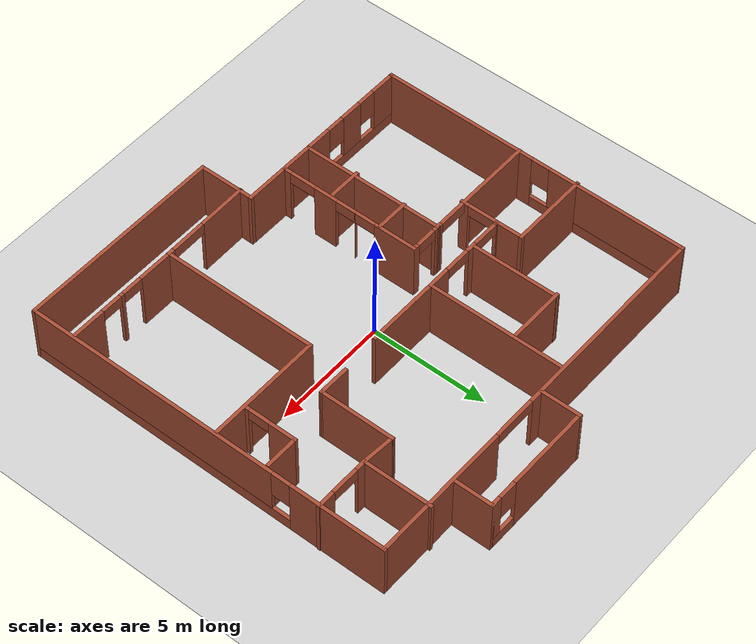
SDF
<sdf version="1.7">
 <world name="default">
  <light name="sun" type="directional">
   <pose>0 0 10 0 -0 0</pose>
   <diffuse>0.8 0.8 0.8 1</diffuse>
   <specular>0.2 0.2 0.2 1</specular>
   <attenuation>
    <range>1000</range>
    <constant>0.9</constant>
    <linear>0.01</linear>
    <quadratic>0.001</quadratic>
   </attenuation>
   <direction>-0.5 0.1 -0.9</direction>
   <spot><inner_angle>0</inner_angle><outer_angle>0</outer_angle><falloff>0</falloff></spot>
  </light>
  <model name="ground_plane">
   <static>1</static>
   <link name="link">
    <collision name="collision">
     <geometry><plane><normal>0 0 1</normal><size>100 100</size></plane></geometry>
     <surface>
      <contact><collide_bitmask>65535</collide_bitmask></contact>
      <friction><ode><mu>100</mu><mu2>50</mu2></ode></friction>
     </surface>
    </collision>
    <visual name="visual">
     <cast_shadows>0</cast_shadows>
     <geometry><plane><normal>0 0 1</normal><size>100 100</size></plane></geometry>
     <material>
      <script><uri>file://media/materials/scripts/gazebo.material</uri><name>Gazebo/Grey</name></script>
     </material>
    </visual>
   </link>
  </model>
  <gravity>0 0 -9.8</gravity>
  <magnetic_field>6e-06 2.3e-05 -4.2e-05</magnetic_field>
  <atmosphere type="adiabatic"/>
  <physics type="ode">
   <max_step_size>0.001</max_step_size>
   <real_time_factor>1</real_time_factor>
   <real_time_update_rate>1000</real_time_update_rate>
  </physics>
  <scene><ambient>0.4 0.4 0.4 1</ambient><background>0.7 0.7 0.7 1</background><shadows>1</shadows></scene>
  <spherical_coordinates>
   <surface_model>EARTH_WGS84</surface_model>
   <latitude_deg>0</latitude_deg>
   <longitude_deg>0</longitude_deg>
   <elevation>0</elevation>
   <heading_deg>0</heading_deg>
  </spherical_coordinates>
  <model name="mapx">
   <pose>-0.036516 0.215678 0 0 -0 0</pose>
   <link name="Door_7">
    <collision name="Door_7_Collision">
     <geometry><box><size>1.36261 0.2 2</size></box></geometry>
     <pose>0 0 1 0 -0 0</pose>
    </collision>
    <visual name="Door_7_Visual">
     <pose>0 0 1 0 -0 0</pose>
     <geometry><box><size>1.36261 0.2 2</size></box></geometry>
     <material>
      <script><uri>file://media/materials/scripts/gazebo.material</uri><name>Gazebo/Grey</name></script>
     </material>
    </visual>
    <pose>4.3381 -0.368604 0 0 -0 0</pose>
   </link>
   <link name="Wall_0">
    <pose>0.038988 7.10477 0 0 -0 0</pose>
    <visual name="Wall_0_Visual_0">
     <pose>-3.99365 0 1.25 0 -0 0</pose>
     <geometry><box><size>9.01271 0.15 2.5</size></box></geometry>
     <material>
      <script><uri>file://media/materials/scripts/gazebo.material</uri><name>Gazebo/Bricks</name></script>
      <ambient>1 1 1 1</ambient>
     </material>
     <meta><layer>0</layer></meta>
    </visual>
    <collision name="Wall_0_Collision_0">
     <geometry><box><size>9.01271 0.15 2.5</size></box></geometry>
     <pose>-3.99365 0 1.25 0 -0 0</pose>
    </collision>
    <visual name="Wall_0_Visual_1">
     <pose>5.4458 0 1.25 0 -0 0</pose>
     <geometry><box><size>6.10841 0.15 2.5</size></box></geometry>
     <material>
      <script><uri>file://media/materials/scripts/gazebo.material</uri><name>Gazebo/Bricks</name></script>
      <ambient>1 1 1 1</ambient>
     </material>
     <meta><layer>0</layer></meta>
    </visual>
    <collision name="Wall_0_Collision_1">
     <geometry><box><size>6.10841 0.15 2.5</size></box></geometry>
     <pose>5.4458 0 1.25 0 -0 0</pose>
    </collision>
    <visual name="Wall_0_Visual_2">
     <pose>1.45215 0 2.25 0 -0 0</pose>
     <geometry><box><size>1.87889 0.15 0.5</size></box></geometry>
     <material>
      <script><uri>file://media/materials/scripts/gazebo.material</uri><name>Gazebo/Bricks</name></script>
      <ambient>1 1 1 1</ambient>
     </material>
     <meta><layer>0</layer></meta>
    </visual>
    <collision name="Wall_0_Collision_2">
     <geometry><box><size>1.87889 0.15 0.5</size></box></geometry>
     <pose>1.45215 0 2.25 0 -0 0</pose>
    </collision>
   </link>
   <link name="Wall_11">
    <collision name="Wall_11_Collision">
     <geometry><box><size>1.75 0.15 2.5</size></box></geometry>
     <pose>0 0 1.25 0 -0 0</pose>
    </collision>
    <visual name="Wall_11_Visual">
     <pose>0 0 1.25 0 -0 0</pose>
     <geometry><box><size>1.75 0.15 2.5</size></box></geometry>
     <material>
      <script><uri>file://media/materials/scripts/gazebo.material</uri><name>Gazebo/Bricks</name></script>
      <ambient>1 1 1 1</ambient>
     </material>
     <meta><layer>0</layer></meta>
    </visual>
    <pose>-0.011707 7.94523 0 0 -0 1.5708</pose>
   </link>
   <link name="Wall_12">
    <pose>2.41329 8.74523 0 0 -0 0</pose>
    <visual name="Wall_12_Visual_0">
     <pose>-0.647986 0 1.25 0 -0 0</pose>
     <geometry><box><size>3.70403 0.15 2.5</size></box></geometry>
     <material>
      <script><uri>file://media/materials/scripts/gazebo.material</uri><name>Gazebo/Bricks</name></script>
      <ambient>1 1 1 1</ambient>
     </material>
     <meta><layer>0</layer></meta>
    </visual>
    <collision name="Wall_12_Collision_0">
     <geometry><box><size>3.70403 0.15 2.5</size></box></geometry>
     <pose>-0.647986 0 1.25 0 -0 0</pose>
    </collision>
    <visual name="Wall_12_Visual_1">
     <pose>1.85201 0 0.25 0 -0 0</pose>
     <geometry><box><size>1.29597 0.15 0.5</size></box></geometry>
     <material>
      <script><uri>file://media/materials/scripts/gazebo.material</uri><name>Gazebo/Bricks</name></script>
      <ambient>1 1 1 1</ambient>
     </material>
     <meta><layer>0</layer></meta>
    </visual>
    <collision name="Wall_12_Collision_1">
     <geometry><box><size>1.29597 0.15 0.5</size></box></geometry>
     <pose>1.85201 0 0.25 0 -0 0</pose>
    </collision>
    <visual name="Wall_12_Visual_2">
     <pose>2.25201 0 1.5 0 -0 0</pose>
     <geometry><box><size>0.495972 0.15 2</size></box></geometry>
     <material>
      <script><uri>file://media/materials/scripts/gazebo.material</uri><name>Gazebo/Bricks</name></script>
      <ambient>1 1 1 1</ambient>
     </material>
     <meta><layer>0</layer></meta>
    </visual>
    <collision name="Wall_12_Collision_2">
     <geometry><box><size>0.495972 0.15 2</size></box></geometry>
     <pose>2.25201 0 1.5 0 -0 0</pose>
    </collision>
    <visual name="Wall_12_Visual_3">
     <pose>1.60403 0 1.9 0 -0 0</pose>
     <geometry><box><size>0.8 0.15 1.2</size></box></geometry>
     <material>
      <script><uri>file://media/materials/scripts/gazebo.material</uri><name>Gazebo/Bricks</name></script>
      <ambient>1 1 1 1</ambient>
     </material>
     <meta><layer>0</layer></meta>
    </visual>
    <collision name="Wall_12_Collision_3">
     <geometry><box><size>0.8 0.15 1.2</size></box></geometry>
     <pose>1.60403 0 1.9 0 -0 0</pose>
    </collision>
   </link>
   <link name="Wall_13">
    <collision name="Wall_13_Collision">
     <geometry><box><size>1.75 0.15 2.5</size></box></geometry>
     <pose>0 0 1.25 0 -0 0</pose>
    </collision>
    <visual name="Wall_13_Visual">
     <pose>0 0 1.25 0 -0 0</pose>
     <geometry><box><size>1.75 0.15 2.5</size></box></geometry>
     <material>
      <script><uri>file://media/materials/scripts/gazebo.material</uri><name>Gazebo/Bricks</name></script>
      <ambient>1 1 1 1</ambient>
     </material>
     <meta><layer>0</layer></meta>
    </visual>
    <pose>4.83829 7.94523 0 0 -0 -1.5708</pose>
   </link>
   <link name="Wall_15">
    <pose>-6.03347 -0.282016 0 0 -0 0</pose>
    <visual name="Wall_15_Visual_0">
     <pose>-0.773656 0 1.25 0 -0 0</pose>
     <geometry><box><size>3.45269 0.15 2.5</size></box></geometry>
     <material>
      <script><uri>file://media/materials/scripts/gazebo.material</uri><name>Gazebo/Bricks</name></script>
      <ambient>1 1 1 1</ambient>
     </material>
     <meta><layer>0</layer></meta>
    </visual>
    <collision name="Wall_15_Collision_0">
     <geometry><box><size>3.45269 0.15 2.5</size></box></geometry>
     <pose>-0.773656 0 1.25 0 -0 0</pose>
    </collision>
    <visual name="Wall_15_Visual_1">
     <pose>2.36139 0 1.25 0 -0 0</pose>
     <geometry><box><size>0.277222 0.15 2.5</size></box></geometry>
     <material>
      <script><uri>file://media/materials/scripts/gazebo.material</uri><name>Gazebo/Bricks</name></script>
      <ambient>1 1 1 1</ambient>
     </material>
     <meta><layer>0</layer></meta>
    </visual>
    <collision name="Wall_15_Collision_1">
     <geometry><box><size>0.277222 0.15 2.5</size></box></geometry>
     <pose>2.36139 0 1.25 0 -0 0</pose>
    </collision>
    <visual name="Wall_15_Visual_2">
     <pose>1.58773 0 2.25 0 -0 0</pose>
     <geometry><box><size>1.27009 0.15 0.5</size></box></geometry>
     <material>
      <script><uri>file://media/materials/scripts/gazebo.material</uri><name>Gazebo/Bricks</name></script>
      <ambient>1 1 1 1</ambient>
     </material>
     <meta><layer>0</layer></meta>
    </visual>
    <collision name="Wall_15_Collision_2">
     <geometry><box><size>1.27009 0.15 0.5</size></box></geometry>
     <pose>1.58773 0 2.25 0 -0 0</pose>
    </collision>
   </link>
   <link name="Wall_16">
    <collision name="Wall_16_Collision">
     <geometry><box><size>6.25 0.15 2.5</size></box></geometry>
     <pose>0 0 1.25 0 -0 0</pose>
    </collision>
    <visual name="Wall_16_Visual">
     <pose>0 0 1.25 0 -0 0</pose>
     <geometry><box><size>6.25 0.15 2.5</size></box></geometry>
     <material>
      <script><uri>file://media/materials/scripts/gazebo.material</uri><name>Gazebo/Bricks</name></script>
      <ambient>1 1 1 1</ambient>
     </material>
     <meta><layer>0</layer></meta>
    </visual>
    <pose>-3.60847 -3.33202 0 0 -0 -1.5708</pose>
   </link>
   <link name="Wall_18">
    <pose>-2.93347 -0.282016 0 0 -0 0</pose>
    <visual name="Wall_18_Visual_0">
     <pose>-0.599085 0 1.25 0 -0 0</pose>
     <geometry><box><size>0.30183 0.15 2.5</size></box></geometry>
     <material>
      <script><uri>file://media/materials/scripts/gazebo.material</uri><name>Gazebo/Bricks</name></script>
      <ambient>1 1 1 1</ambient>
     </material>
     <meta><layer>0</layer></meta>
    </visual>
    <collision name="Wall_18_Collision_0">
     <geometry><box><size>0.30183 0.15 2.5</size></box></geometry>
     <pose>-0.599085 0 1.25 0 -0 0</pose>
    </collision>
    <visual name="Wall_18_Visual_1">
     <pose>0.600915 0 1.25 0 -0 0</pose>
     <geometry><box><size>0.29817 0.15 2.5</size></box></geometry>
     <material>
      <script><uri>file://media/materials/scripts/gazebo.material</uri><name>Gazebo/Bricks</name></script>
      <ambient>1 1 1 1</ambient>
     </material>
     <meta><layer>0</layer></meta>
    </visual>
    <collision name="Wall_18_Collision_1">
     <geometry><box><size>0.29817 0.15 2.5</size></box></geometry>
     <pose>0.600915 0 1.25 0 -0 0</pose>
    </collision>
    <visual name="Wall_18_Visual_2">
     <pose>0.00183 0 2.25 0 -0 0</pose>
     <geometry><box><size>0.9 0.15 0.5</size></box></geometry>
     <material>
      <script><uri>file://media/materials/scripts/gazebo.material</uri><name>Gazebo/Bricks</name></script>
      <ambient>1 1 1 1</ambient>
     </material>
     <meta><layer>0</layer></meta>
    </visual>
    <collision name="Wall_18_Collision_2">
     <geometry><box><size>0.9 0.15 0.5</size></box></geometry>
     <pose>0.00183 0 2.25 0 -0 0</pose>
    </collision>
   </link>
   <link name="Wall_19">
    <pose>-2.25847 -3.33202 0 0 -0 -1.5708</pose>
    <visual name="Wall_19_Visual_0">
     <pose>-2.18753 0 1.25 0 -0 0</pose>
     <geometry><box><size>1.87493 0.15 2.5</size></box></geometry>
     <material>
      <script><uri>file://media/materials/scripts/gazebo.material</uri><name>Gazebo/Bricks</name></script>
      <ambient>1 1 1 1</ambient>
     </material>
     <meta><layer>0</layer></meta>
    </visual>
    <collision name="Wall_19_Collision_0">
     <geometry><box><size>1.87493 0.15 2.5</size></box></geometry>
     <pose>-2.18753 0 1.25 0 -0 0</pose>
    </collision>
    <visual name="Wall_19_Visual_1">
     <pose>-0.348184 0 1.25 0 -0 0</pose>
     <geometry><box><size>0.003769 0.15 2.5</size></box></geometry>
     <material>
      <script><uri>file://media/materials/scripts/gazebo.material</uri><name>Gazebo/Bricks</name></script>
      <ambient>1 1 1 1</ambient>
     </material>
     <meta><layer>0</layer></meta>
    </visual>
    <collision name="Wall_19_Collision_1">
     <geometry><box><size>0.003769 0.15 2.5</size></box></geometry>
     <pose>-0.348184 0 1.25 0 -0 0</pose>
    </collision>
    <visual name="Wall_19_Visual_2">
     <pose>1.06075 0 1.25 0 -0 0</pose>
     <geometry><box><size>1.0141 0.15 2.5</size></box></geometry>
     <material>
      <script><uri>file://media/materials/scripts/gazebo.material</uri><name>Gazebo/Bricks</name></script>
      <ambient>1 1 1 1</ambient>
     </material>
     <meta><layer>0</layer></meta>
    </visual>
    <collision name="Wall_19_Collision_2">
     <geometry><box><size>1.0141 0.15 2.5</size></box></geometry>
     <pose>1.06075 0 1.25 0 -0 0</pose>
    </collision>
    <visual name="Wall_19_Visual_3">
     <pose>2.92362 0 1.25 0 -0 0</pose>
     <geometry><box><size>0.402759 0.15 2.5</size></box></geometry>
     <material>
      <script><uri>file://media/materials/scripts/gazebo.material</uri><name>Gazebo/Bricks</name></script>
      <ambient>1 1 1 1</ambient>
     </material>
     <meta><layer>0</layer></meta>
    </visual>
    <collision name="Wall_19_Collision_3">
     <geometry><box><size>0.402759 0.15 2.5</size></box></geometry>
     <pose>2.92362 0 1.25 0 -0 0</pose>
    </collision>
    <visual name="Wall_19_Visual_4">
     <pose>-0.800069 0 2.25 0 -0 0</pose>
     <geometry><box><size>0.9 0.15 0.5</size></box></geometry>
     <material>
      <script><uri>file://media/materials/scripts/gazebo.material</uri><name>Gazebo/Bricks</name></script>
      <ambient>1 1 1 1</ambient>
     </material>
     <meta><layer>0</layer></meta>
    </visual>
    <collision name="Wall_19_Collision_4">
     <geometry><box><size>0.9 0.15 0.5</size></box></geometry>
     <pose>-0.800069 0 2.25 0 -0 0</pose>
    </collision>
    <visual name="Wall_19_Visual_5">
     <pose>0.103701 0 2.25 0 -0 0</pose>
     <geometry><box><size>0.9 0.15 0.5</size></box></geometry>
     <material>
      <script><uri>file://media/materials/scripts/gazebo.material</uri><name>Gazebo/Bricks</name></script>
      <ambient>1 1 1 1</ambient>
     </material>
     <meta><layer>0</layer></meta>
    </visual>
    <collision name="Wall_19_Collision_5">
     <geometry><box><size>0.9 0.15 0.5</size></box></geometry>
     <pose>0.103701 0 2.25 0 -0 0</pose>
    </collision>
    <visual name="Wall_19_Visual_6">
     <pose>2.14502 0 2.25 0 -0 0</pose>
     <geometry><box><size>1.15444 0.15 0.5</size></box></geometry>
     <material>
      <script><uri>file://media/materials/scripts/gazebo.material</uri><name>Gazebo/Bricks</name></script>
      <ambient>1 1 1 1</ambient>
     </material>
     <meta><layer>0</layer></meta>
    </visual>
    <collision name="Wall_19_Collision_6">
     <geometry><box><size>1.15444 0.15 0.5</size></box></geometry>
     <pose>2.14502 0 2.25 0 -0 0</pose>
    </collision>
   </link>
   <link name="Wall_21">
    <collision name="Wall_21_Collision">
     <geometry><box><size>6.75 0.15 2.5</size></box></geometry>
     <pose>0 0 1.25 0 -0 0</pose>
    </collision>
    <visual name="Wall_21_Visual">
     <pose>0 0 1.25 0 -0 0</pose>
     <geometry><box><size>6.75 0.15 2.5</size></box></geometry>
     <material>
      <script><uri>file://media/materials/scripts/gazebo.material</uri><name>Gazebo/Bricks</name></script>
      <ambient>1 1 1 1</ambient>
     </material>
     <meta><layer>0</layer></meta>
    </visual>
    <pose>3.49817 -3.58202 0 0 -0 -1.5708</pose>
   </link>
   <link name="Wall_22">
    <pose>5.92317 -6.88202 0 0 -0 0</pose>
    <visual name="Wall_22_Visual_0">
     <pose>-1.70755 0 1.25 0 -0 0</pose>
     <geometry><box><size>1.58489 0.15 2.5</size></box></geometry>
     <material>
      <script><uri>file://media/materials/scripts/gazebo.material</uri><name>Gazebo/Bricks</name></script>
      <ambient>1 1 1 1</ambient>
     </material>
     <meta><layer>0</layer></meta>
    </visual>
    <collision name="Wall_22_Collision_0">
     <geometry><box><size>1.58489 0.15 2.5</size></box></geometry>
     <pose>-1.70755 0 1.25 0 -0 0</pose>
    </collision>
    <visual name="Wall_22_Visual_1">
     <pose>0.065654 0 1.25 0 -0 0</pose>
     <geometry><box><size>0.161521 0.15 2.5</size></box></geometry>
     <material>
      <script><uri>file://media/materials/scripts/gazebo.material</uri><name>Gazebo/Bricks</name></script>
      <ambient>1 1 1 1</ambient>
     </material>
     <meta><layer>0</layer></meta>
    </visual>
    <collision name="Wall_22_Collision_1">
     <geometry><box><size>0.161521 0.15 2.5</size></box></geometry>
     <pose>0.065654 0 1.25 0 -0 0</pose>
    </collision>
    <visual name="Wall_22_Visual_2">
     <pose>1.77321 0 1.25 0 -0 0</pose>
     <geometry><box><size>1.45359 0.15 2.5</size></box></geometry>
     <material>
      <script><uri>file://media/materials/scripts/gazebo.material</uri><name>Gazebo/Bricks</name></script>
      <ambient>1 1 1 1</ambient>
     </material>
     <meta><layer>0</layer></meta>
    </visual>
    <collision name="Wall_22_Collision_2">
     <geometry><box><size>1.45359 0.15 2.5</size></box></geometry>
     <pose>1.77321 0 1.25 0 -0 0</pose>
    </collision>
    <visual name="Wall_22_Visual_3">
     <pose>-0.465107 0 2.25 0 -0 0</pose>
     <geometry><box><size>0.9 0.15 0.5</size></box></geometry>
     <material>
      <script><uri>file://media/materials/scripts/gazebo.material</uri><name>Gazebo/Bricks</name></script>
      <ambient>1 1 1 1</ambient>
     </material>
     <meta><layer>0</layer></meta>
    </visual>
    <collision name="Wall_22_Collision_3">
     <geometry><box><size>0.9 0.15 0.5</size></box></geometry>
     <pose>-0.465107 0 2.25 0 -0 0</pose>
    </collision>
    <visual name="Wall_22_Visual_4">
     <pose>0.596414 0 2.25 0 -0 0</pose>
     <geometry><box><size>0.9 0.15 0.5</size></box></geometry>
     <material>
      <script><uri>file://media/materials/scripts/gazebo.material</uri><name>Gazebo/Bricks</name></script>
      <ambient>1 1 1 1</ambient>
     </material>
     <meta><layer>0</layer></meta>
    </visual>
    <collision name="Wall_22_Collision_4">
     <geometry><box><size>0.9 0.15 0.5</size></box></geometry>
     <pose>0.596414 0 2.25 0 -0 0</pose>
    </collision>
   </link>
   <link name="Wall_24">
    <pose>1.54417 -6.90848 0 0 -0 0.013541</pose>
    <visual name="Wall_24_Visual_0">
     <pose>-0.941297 0 1.25 0 -0 0</pose>
     <geometry><box><size>2.17577 0.15 2.5</size></box></geometry>
     <material>
      <script><uri>file://media/materials/scripts/gazebo.material</uri><name>Gazebo/Bricks</name></script>
      <ambient>1 1 1 1</ambient>
     </material>
     <meta><layer>0</layer></meta>
    </visual>
    <collision name="Wall_24_Collision_0">
     <geometry><box><size>2.17577 0.15 2.5</size></box></geometry>
     <pose>-0.941297 0 1.25 0 -0 0</pose>
    </collision>
    <visual name="Wall_24_Visual_1">
     <pose>1.87205 0 1.25 0 -0 0</pose>
     <geometry><box><size>0.314258 0.15 2.5</size></box></geometry>
     <material>
      <script><uri>file://media/materials/scripts/gazebo.material</uri><name>Gazebo/Bricks</name></script>
      <ambient>1 1 1 1</ambient>
     </material>
     <meta><layer>0</layer></meta>
    </visual>
    <collision name="Wall_24_Collision_1">
     <geometry><box><size>0.314258 0.15 2.5</size></box></geometry>
     <pose>1.87205 0 1.25 0 -0 0</pose>
    </collision>
    <visual name="Wall_24_Visual_2">
     <pose>0.930757 0 2.25 0 -0 0</pose>
     <geometry><box><size>1.56834 0.15 0.5</size></box></geometry>
     <material>
      <script><uri>file://media/materials/scripts/gazebo.material</uri><name>Gazebo/Bricks</name></script>
      <ambient>1 1 1 1</ambient>
     </material>
     <meta><layer>0</layer></meta>
    </visual>
    <collision name="Wall_24_Collision_2">
     <geometry><box><size>1.56834 0.15 0.5</size></box></geometry>
     <pose>0.930757 0 2.25 0 -0 0</pose>
    </collision>
   </link>
   <link name="Wall_26">
    <collision name="Wall_26_Collision">
     <geometry><box><size>1.5 0.15 2.5</size></box></geometry>
     <pose>0 0 1.25 0 -0 0</pose>
    </collision>
    <visual name="Wall_26_Visual">
     <pose>0 0 1.25 0 -0 0</pose>
     <geometry><box><size>1.5 0.15 2.5</size></box></geometry>
     <material>
      <script><uri>file://media/materials/scripts/gazebo.material</uri><name>Gazebo/Bricks</name></script>
      <ambient>1 1 1 1</ambient>
     </material>
     <meta><layer>0</layer></meta>
    </visual>
    <pose>-2.98484 -1.88466 0 0 -0 0</pose>
   </link>
   <link name="Wall_28">
    <collision name="Wall_28_Collision">
     <geometry><box><size>1.5 0.15 2.5</size></box></geometry>
     <pose>0 0 1.25 0 -0 0</pose>
    </collision>
    <visual name="Wall_28_Visual">
     <pose>0 0 1.25 0 -0 0</pose>
     <geometry><box><size>1.5 0.15 2.5</size></box></geometry>
     <material>
      <script><uri>file://media/materials/scripts/gazebo.material</uri><name>Gazebo/Bricks</name></script>
      <ambient>1 1 1 1</ambient>
     </material>
     <meta><layer>0</layer></meta>
    </visual>
    <pose>-3.06575 -4.19063 0 0 -0 0</pose>
   </link>
   <link name="Wall_30">
    <collision name="Wall_30_Collision">
     <geometry><box><size>5 0.15 2.5</size></box></geometry>
     <pose>0 0 1.25 0 -0 0</pose>
    </collision>
    <visual name="Wall_30_Visual">
     <pose>0 0 1.25 0 -0 0</pose>
     <geometry><box><size>5 0.15 2.5</size></box></geometry>
     <material>
      <script><uri>file://media/materials/scripts/gazebo.material</uri><name>Gazebo/Bricks</name></script>
      <ambient>1 1 1 1</ambient>
     </material>
     <meta><layer>0</layer></meta>
    </visual>
    <pose>5.92317 -0.282016 0 0 -0 0</pose>
   </link>
   <link name="Wall_32">
    <collision name="Wall_32_Collision">
     <geometry><box><size>6 0.15 2.5</size></box></geometry>
     <pose>0 0 1.25 0 -0 0</pose>
    </collision>
    <visual name="Wall_32_Visual">
     <pose>0 0 1.25 0 -0 0</pose>
     <geometry><box><size>6 0.15 2.5</size></box></geometry>
     <material>
      <script><uri>file://media/materials/scripts/gazebo.material</uri><name>Gazebo/Bricks</name></script>
      <ambient>1 1 1 1</ambient>
     </material>
     <meta><layer>0</layer></meta>
    </visual>
    <pose>-1.2961 4.17206 0 0 -0 -1.5708</pose>
   </link>
   <link name="Wall_33">
    <pose>-3.2211 1.24706 0 0 -0 3.14159</pose>
    <visual name="Wall_33_Visual_0">
     <pose>-1.48591 0 1.25 0 -0 0</pose>
     <geometry><box><size>1.02818 0.15 2.5</size></box></geometry>
     <material>
      <script><uri>file://media/materials/scripts/gazebo.material</uri><name>Gazebo/Bricks</name></script>
      <ambient>1 1 1 1</ambient>
     </material>
     <meta><layer>0</layer></meta>
    </visual>
    <collision name="Wall_33_Collision_0">
     <geometry><box><size>1.02818 0.15 2.5</size></box></geometry>
     <pose>-1.48591 0 1.25 0 -0 0</pose>
    </collision>
    <visual name="Wall_33_Visual_1">
     <pose>0.393719 0 1.25 0 -0 0</pose>
     <geometry><box><size>0.468469 0.15 2.5</size></box></geometry>
     <material>
      <script><uri>file://media/materials/scripts/gazebo.material</uri><name>Gazebo/Bricks</name></script>
      <ambient>1 1 1 1</ambient>
     </material>
     <meta><layer>0</layer></meta>
    </visual>
    <collision name="Wall_33_Collision_1">
     <geometry><box><size>0.468469 0.15 2.5</size></box></geometry>
     <pose>0.393719 0 1.25 0 -0 0</pose>
    </collision>
    <visual name="Wall_33_Visual_2">
     <pose>1.89119 0 1.25 0 -0 0</pose>
     <geometry><box><size>0.21761 0.15 2.5</size></box></geometry>
     <material>
      <script><uri>file://media/materials/scripts/gazebo.material</uri><name>Gazebo/Bricks</name></script>
      <ambient>1 1 1 1</ambient>
     </material>
     <meta><layer>0</layer></meta>
    </visual>
    <collision name="Wall_33_Collision_2">
     <geometry><box><size>0.21761 0.15 2.5</size></box></geometry>
     <pose>1.89119 0 1.25 0 -0 0</pose>
    </collision>
    <visual name="Wall_33_Visual_3">
     <pose>-0.406169 0 2.25 0 -0 0</pose>
     <geometry><box><size>1.13131 0.15 0.5</size></box></geometry>
     <material>
      <script><uri>file://media/materials/scripts/gazebo.material</uri><name>Gazebo/Bricks</name></script>
      <ambient>1 1 1 1</ambient>
     </material>
     <meta><layer>0</layer></meta>
    </visual>
    <collision name="Wall_33_Collision_3">
     <geometry><box><size>1.13131 0.15 0.5</size></box></geometry>
     <pose>-0.406169 0 2.25 0 -0 0</pose>
    </collision>
    <visual name="Wall_33_Visual_4">
     <pose>1.20517 0 2.25 0 -0 0</pose>
     <geometry><box><size>1.15444 0.15 0.5</size></box></geometry>
     <material>
      <script><uri>file://media/materials/scripts/gazebo.material</uri><name>Gazebo/Bricks</name></script>
      <ambient>1 1 1 1</ambient>
     </material>
     <meta><layer>0</layer></meta>
    </visual>
    <collision name="Wall_33_Collision_4">
     <geometry><box><size>1.15444 0.15 0.5</size></box></geometry>
     <pose>1.20517 0 2.25 0 -0 0</pose>
    </collision>
   </link>
   <link name="Wall_34">
    <collision name="Wall_34_Collision">
     <geometry><box><size>1.25 0.15 2.5</size></box></geometry>
     <pose>0 0 1.25 0 -0 0</pose>
    </collision>
    <visual name="Wall_34_Visual">
     <pose>0 0 1.25 0 -0 0</pose>
     <geometry><box><size>1.25 0.15 2.5</size></box></geometry>
     <material>
      <script><uri>file://media/materials/scripts/gazebo.material</uri><name>Gazebo/Bricks</name></script>
      <ambient>1 1 1 1</ambient>
     </material>
     <meta><layer>0</layer></meta>
    </visual>
    <pose>-5.1461 1.79706 0 0 -0 1.5708</pose>
   </link>
   <link name="Wall_35">
    <collision name="Wall_35_Collision">
     <geometry><box><size>3.5 0.15 2.5</size></box></geometry>
     <pose>0 0 1.25 0 -0 0</pose>
    </collision>
    <visual name="Wall_35_Visual">
     <pose>0 0 1.25 0 -0 0</pose>
     <geometry><box><size>3.5 0.15 2.5</size></box></geometry>
     <material>
      <script><uri>file://media/materials/scripts/gazebo.material</uri><name>Gazebo/Bricks</name></script>
      <ambient>1 1 1 1</ambient>
     </material>
     <meta><layer>0</layer></meta>
    </visual>
    <pose>-6.8211 2.34706 0 0 -0 3.14159</pose>
   </link>
   <link name="Wall_37">
    <collision name="Wall_37_Collision">
     <geometry><box><size>3 0.15 2.5</size></box></geometry>
     <pose>0 0 1.25 0 -0 0</pose>
    </collision>
    <visual name="Wall_37_Visual">
     <pose>0 0 1.25 0 -0 0</pose>
     <geometry><box><size>3 0.15 2.5</size></box></geometry>
     <material>
      <script><uri>file://media/materials/scripts/gazebo.material</uri><name>Gazebo/Bricks</name></script>
      <ambient>1 1 1 1</ambient>
     </material>
     <meta><layer>0</layer></meta>
    </visual>
    <pose>6.1461 5.7699 0 0 -0 -1.5708</pose>
   </link>
   <link name="Wall_38">
    <pose>7.3211 4.3449 0 0 -0 0</pose>
    <visual name="Wall_38_Visual_0">
     <pose>-1.00159 0 1.25 0 -0 0</pose>
     <geometry><box><size>0.496822 0.15 2.5</size></box></geometry>
     <material>
      <script><uri>file://media/materials/scripts/gazebo.material</uri><name>Gazebo/Bricks</name></script>
      <ambient>1 1 1 1</ambient>
     </material>
     <meta><layer>0</layer></meta>
    </visual>
    <collision name="Wall_38_Collision_0">
     <geometry><box><size>0.496822 0.15 2.5</size></box></geometry>
     <pose>-1.00159 0 1.25 0 -0 0</pose>
    </collision>
    <visual name="Wall_38_Visual_1">
     <pose>0.851362 0 1.25 0 -0 0</pose>
     <geometry><box><size>0.797276 0.15 2.5</size></box></geometry>
     <material>
      <script><uri>file://media/materials/scripts/gazebo.material</uri><name>Gazebo/Bricks</name></script>
      <ambient>1 1 1 1</ambient>
     </material>
     <meta><layer>0</layer></meta>
    </visual>
    <collision name="Wall_38_Collision_1">
     <geometry><box><size>0.797276 0.15 2.5</size></box></geometry>
     <pose>0.851362 0 1.25 0 -0 0</pose>
    </collision>
    <visual name="Wall_38_Visual_2">
     <pose>-0.150227 0 2.25 0 -0 0</pose>
     <geometry><box><size>1.2059 0.15 0.5</size></box></geometry>
     <material>
      <script><uri>file://media/materials/scripts/gazebo.material</uri><name>Gazebo/Bricks</name></script>
      <ambient>1 1 1 1</ambient>
     </material>
     <meta><layer>0</layer></meta>
    </visual>
    <collision name="Wall_38_Collision_2">
     <geometry><box><size>1.2059 0.15 0.5</size></box></geometry>
     <pose>-0.150227 0 2.25 0 -0 0</pose>
    </collision>
   </link>
   <link name="Wall_40">
    <collision name="Wall_40_Collision">
     <geometry><box><size>1.5 0.15 2.5</size></box></geometry>
     <pose>0 0 1.25 0 -0 0</pose>
    </collision>
    <visual name="Wall_40_Visual">
     <pose>0 0 1.25 0 -0 0</pose>
     <geometry><box><size>1.5 0.15 2.5</size></box></geometry>
     <material>
      <script><uri>file://media/materials/scripts/gazebo.material</uri><name>Gazebo/Bricks</name></script>
      <ambient>1 1 1 1</ambient>
     </material>
     <meta><layer>0</layer></meta>
    </visual>
    <pose>7.61645 1.96397 0 0 -0 0</pose>
   </link>
   <link name="Wall_46">
    <collision name="Wall_46_Collision">
     <geometry><box><size>3.25 0.15 2.5</size></box></geometry>
     <pose>0 0 1.25 0 -0 0</pose>
    </collision>
    <visual name="Wall_46_Visual">
     <pose>0 0 1.25 0 -0 0</pose>
     <geometry><box><size>3.25 0.15 2.5</size></box></geometry>
     <material>
      <script><uri>file://media/materials/scripts/gazebo.material</uri><name>Gazebo/Bricks</name></script>
      <ambient>1 1 1 1</ambient>
     </material>
     <meta><layer>0</layer></meta>
    </visual>
    <pose>4.80013 2.90217 0 0 -0 1.5708</pose>
   </link>
   <link name="Wall_47">
    <collision name="Wall_47_Collision">
     <geometry><box><size>1.50024 0.15 2.5</size></box></geometry>
     <pose>0 0 1.25 0 -0 0</pose>
    </collision>
    <visual name="Wall_47_Visual">
     <pose>0 0 1.25 0 -0 0</pose>
     <geometry><box><size>1.50024 0.15 2.5</size></box></geometry>
     <material>
      <script><uri>file://media/materials/scripts/gazebo.material</uri><name>Gazebo/Bricks</name></script>
      <ambient>1 1 1 1</ambient>
     </material>
     <meta><layer>0</layer></meta>
    </visual>
    <pose>5.47312 4.39854 0 0 -0 -0.079526</pose>
   </link>
   <link name="Wall_49">
    <collision name="Wall_49_Collision">
     <geometry><box><size>1.39351 0.15 2.5</size></box></geometry>
     <pose>0 0 1.25 0 -0 0</pose>
    </collision>
    <visual name="Wall_49_Visual">
     <pose>0 0 1.25 0 -0 0</pose>
     <geometry><box><size>1.39351 0.15 2.5</size></box></geometry>
     <material>
      <script><uri>file://media/materials/scripts/gazebo.material</uri><name>Gazebo/Bricks</name></script>
      <ambient>1 1 1 1</ambient>
     </material>
     <meta><layer>0</layer></meta>
    </visual>
    <pose>4.17839 1.35682 0 0 -0 -0.007485</pose>
   </link>
   <link name="Wall_5">
    <pose>8.46399 -0.820227 0 0 -0 -1.5708</pose>
    <visual name="Wall_5_Visual_0">
     <pose>-5.94389 0 1.25 0 -0 0</pose>
     <geometry><box><size>4.11222 0.15 2.5</size></box></geometry>
     <material>
      <script><uri>file://media/materials/scripts/gazebo.material</uri><name>Gazebo/Bricks</name></script>
      <ambient>1 1 1 1</ambient>
     </material>
     <meta><layer>0</layer></meta>
    </visual>
    <collision name="Wall_5_Collision_0">
     <geometry><box><size>4.11222 0.15 2.5</size></box></geometry>
     <pose>-5.94389 0 1.25 0 -0 0</pose>
    </collision>
    <visual name="Wall_5_Visual_1">
     <pose>2.05611 0 0.25 0 -0 0</pose>
     <geometry><box><size>11.8878 0.15 0.5</size></box></geometry>
     <material>
      <script><uri>file://media/materials/scripts/gazebo.material</uri><name>Gazebo/Bricks</name></script>
      <ambient>1 1 1 1</ambient>
     </material>
     <meta><layer>0</layer></meta>
    </visual>
    <collision name="Wall_5_Collision_1">
     <geometry><box><size>11.8878 0.15 0.5</size></box></geometry>
     <pose>2.05611 0 0.25 0 -0 0</pose>
    </collision>
    <visual name="Wall_5_Visual_2">
     <pose>2.45611 0 1.5 0 -0 0</pose>
     <geometry><box><size>11.0878 0.15 2</size></box></geometry>
     <material>
      <script><uri>file://media/materials/scripts/gazebo.material</uri><name>Gazebo/Bricks</name></script>
      <ambient>1 1 1 1</ambient>
     </material>
     <meta><layer>0</layer></meta>
    </visual>
    <collision name="Wall_5_Collision_2">
     <geometry><box><size>11.0878 0.15 2</size></box></geometry>
     <pose>2.45611 0 1.5 0 -0 0</pose>
    </collision>
    <visual name="Wall_5_Visual_3">
     <pose>-3.48778 0 1.9 0 -0 0</pose>
     <geometry><box><size>0.8 0.15 1.2</size></box></geometry>
     <material>
      <script><uri>file://media/materials/scripts/gazebo.material</uri><name>Gazebo/Bricks</name></script>
      <ambient>1 1 1 1</ambient>
     </material>
     <meta><layer>0</layer></meta>
    </visual>
    <collision name="Wall_5_Collision_3">
     <geometry><box><size>0.8 0.15 1.2</size></box></geometry>
     <pose>-3.48778 0 1.9 0 -0 0</pose>
    </collision>
   </link>
   <link name="Wall_51">
    <collision name="Wall_51_Collision">
     <geometry><box><size>3.75 0.15 2.5</size></box></geometry>
     <pose>0 0 1.25 0 -0 0</pose>
    </collision>
    <visual name="Wall_51_Visual">
     <pose>0 0 1.25 0 -0 0</pose>
     <geometry><box><size>3.75 0.15 2.5</size></box></geometry>
     <material>
      <script><uri>file://media/materials/scripts/gazebo.material</uri><name>Gazebo/Bricks</name></script>
      <ambient>1 1 1 1</ambient>
     </material>
     <meta><layer>0</layer></meta>
    </visual>
    <pose>-3.71608 3.15881 0 0 -0 1.5708</pose>
   </link>
   <link name="Wall_53">
    <collision name="Wall_53_Collision">
     <geometry><box><size>2.5 0.15 2.5</size></box></geometry>
     <pose>0 0 1.25 0 -0 0</pose>
    </collision>
    <visual name="Wall_53_Visual">
     <pose>0 0 1.25 0 -0 0</pose>
     <geometry><box><size>2.5 0.15 2.5</size></box></geometry>
     <material>
      <script><uri>file://media/materials/scripts/gazebo.material</uri><name>Gazebo/Bricks</name></script>
      <ambient>1 1 1 1</ambient>
     </material>
     <meta><layer>0</layer></meta>
    </visual>
    <pose>-2.61144 4.94704 0 0 -0 0</pose>
   </link>
   <link name="Wall_55">
    <collision name="Wall_55_Collision">
     <geometry><box><size>3.25 0.15 2.5</size></box></geometry>
     <pose>0 0 1.25 0 -0 0</pose>
    </collision>
    <visual name="Wall_55_Visual">
     <pose>0 0 1.25 0 -0 0</pose>
     <geometry><box><size>3.25 0.15 2.5</size></box></geometry>
     <material>
      <script><uri>file://media/materials/scripts/gazebo.material</uri><name>Gazebo/Bricks</name></script>
      <ambient>1 1 1 1</ambient>
     </material>
     <meta><layer>0</layer></meta>
    </visual>
    <pose>0.253898 1.24706 0 0 -0 0</pose>
   </link>
   <link name="Wall_6">
    <collision name="Wall_6_Collision">
     <geometry><box><size>9 0.15 2.5</size></box></geometry>
     <pose>0 0 1.25 0 -0 0</pose>
    </collision>
    <visual name="Wall_6_Visual">
     <pose>0 0 1.25 0 -0 0</pose>
     <geometry><box><size>9 0.15 2.5</size></box></geometry>
     <material>
      <script><uri>file://media/materials/scripts/gazebo.material</uri><name>Gazebo/Bricks</name></script>
      <ambient>1 1 1 1</ambient>
     </material>
     <meta><layer>0</layer></meta>
    </visual>
    <pose>4.03899 -8.74523 0 0 -0 3.14159</pose>
   </link>
   <link name="Wall_63">
    <pose>6.94145 0.913974 0 0 -0 -1.5708</pose>
    <visual name="Wall_63_Visual_0">
     <pose>-0.524667 0 1.25 0 -0 0</pose>
     <geometry><box><size>1.20067 0.15 2.5</size></box></geometry>
     <material>
      <script><uri>file://media/materials/scripts/gazebo.material</uri><name>Gazebo/Bricks</name></script>
      <ambient>1 1 1 1</ambient>
     </material>
     <meta><layer>0</layer></meta>
    </visual>
    <collision name="Wall_63_Collision_0">
     <geometry><box><size>1.20067 0.15 2.5</size></box></geometry>
     <pose>-0.524667 0 1.25 0 -0 0</pose>
    </collision>
    <visual name="Wall_63_Visual_1">
     <pose>1.05033 0 1.25 0 -0 0</pose>
     <geometry><box><size>0.149335 0.15 2.5</size></box></geometry>
     <material>
      <script><uri>file://media/materials/scripts/gazebo.material</uri><name>Gazebo/Bricks</name></script>
      <ambient>1 1 1 1</ambient>
     </material>
     <meta><layer>0</layer></meta>
    </visual>
    <collision name="Wall_63_Collision_1">
     <geometry><box><size>0.149335 0.15 2.5</size></box></geometry>
     <pose>1.05033 0 1.25 0 -0 0</pose>
    </collision>
    <visual name="Wall_63_Visual_2">
     <pose>0.525665 0 2.25 0 -0 0</pose>
     <geometry><box><size>0.9 0.15 0.5</size></box></geometry>
     <material>
      <script><uri>file://media/materials/scripts/gazebo.material</uri><name>Gazebo/Bricks</name></script>
      <ambient>1 1 1 1</ambient>
     </material>
     <meta><layer>0</layer></meta>
    </visual>
    <collision name="Wall_63_Collision_2">
     <geometry><box><size>0.9 0.15 0.5</size></box></geometry>
     <pose>0.525665 0 2.25 0 -0 0</pose>
    </collision>
   </link>
   <link name="Wall_65">
    <pose>-5.1461 0.44706 0 0 -0 -1.5708</pose>
    <visual name="Wall_65_Visual_0">
     <pose>-0.809838 0 1.25 0 -0 0</pose>
     <geometry><box><size>0.130325 0.15 2.5</size></box></geometry>
     <material>
      <script><uri>file://media/materials/scripts/gazebo.material</uri><name>Gazebo/Bricks</name></script>
      <ambient>1 1 1 1</ambient>
     </material>
     <meta><layer>0</layer></meta>
    </visual>
    <collision name="Wall_65_Collision_0">
     <geometry><box><size>0.130325 0.15 2.5</size></box></geometry>
     <pose>-0.809838 0 1.25 0 -0 0</pose>
    </collision>
    <visual name="Wall_65_Visual_1">
     <pose>0.680475 0 1.25 0 -0 0</pose>
     <geometry><box><size>0.38905 0.15 2.5</size></box></geometry>
     <material>
      <script><uri>file://media/materials/scripts/gazebo.material</uri><name>Gazebo/Bricks</name></script>
      <ambient>1 1 1 1</ambient>
     </material>
     <meta><layer>0</layer></meta>
    </visual>
    <collision name="Wall_65_Collision_1">
     <geometry><box><size>0.38905 0.15 2.5</size></box></geometry>
     <pose>0.680475 0 1.25 0 -0 0</pose>
    </collision>
    <visual name="Wall_65_Visual_2">
     <pose>-0.129363 0 2.25 0 -0 0</pose>
     <geometry><box><size>1.23063 0.15 0.5</size></box></geometry>
     <material>
      <script><uri>file://media/materials/scripts/gazebo.material</uri><name>Gazebo/Bricks</name></script>
      <ambient>1 1 1 1</ambient>
     </material>
     <meta><layer>0</layer></meta>
    </visual>
    <collision name="Wall_65_Collision_2">
     <geometry><box><size>1.23063 0.15 0.5</size></box></geometry>
     <pose>-0.129363 0 2.25 0 -0 0</pose>
    </collision>
   </link>
   <link name="Wall_7">
    <collision name="Wall_7_Collision">
     <geometry><box><size>2.5 0.15 2.5</size></box></geometry>
     <pose>0 0 1.25 0 -0 0</pose>
    </collision>
    <visual name="Wall_7_Visual">
     <pose>0 0 1.25 0 -0 0</pose>
     <geometry><box><size>2.5 0.15 2.5</size></box></geometry>
     <material>
      <script><uri>file://media/materials/scripts/gazebo.material</uri><name>Gazebo/Bricks</name></script>
      <ambient>1 1 1 1</ambient>
     </material>
     <meta><layer>0</layer></meta>
    </visual>
    <pose>-0.386012 -7.57023 0 0 -0 1.5708</pose>
   </link>
   <link name="Wall_8">
    <pose>-4.43601 -6.39523 0 0 -0 3.14159</pose>
    <visual name="Wall_8_Visual_0">
     <pose>-1.9013 0 1.25 0 -0 0</pose>
     <geometry><box><size>4.4474 0.15 2.5</size></box></geometry>
     <material>
      <script><uri>file://media/materials/scripts/gazebo.material</uri><name>Gazebo/Bricks</name></script>
      <ambient>1 1 1 1</ambient>
     </material>
     <meta><layer>0</layer></meta>
    </visual>
    <collision name="Wall_8_Collision_0">
     <geometry><box><size>4.4474 0.15 2.5</size></box></geometry>
     <pose>-1.9013 0 1.25 0 -0 0</pose>
    </collision>
    <visual name="Wall_8_Visual_1">
     <pose>2.2237 0 0.25 0 -0 0</pose>
     <geometry><box><size>3.8026 0.15 0.5</size></box></geometry>
     <material>
      <script><uri>file://media/materials/scripts/gazebo.material</uri><name>Gazebo/Bricks</name></script>
      <ambient>1 1 1 1</ambient>
     </material>
     <meta><layer>0</layer></meta>
    </visual>
    <collision name="Wall_8_Collision_1">
     <geometry><box><size>3.8026 0.15 0.5</size></box></geometry>
     <pose>2.2237 0 0.25 0 -0 0</pose>
    </collision>
    <visual name="Wall_8_Visual_2">
     <pose>1.61946 0 1.5 0 -0 0</pose>
     <geometry><box><size>0.994117 0.15 2</size></box></geometry>
     <material>
      <script><uri>file://media/materials/scripts/gazebo.material</uri><name>Gazebo/Bricks</name></script>
      <ambient>1 1 1 1</ambient>
     </material>
     <meta><layer>0</layer></meta>
    </visual>
    <collision name="Wall_8_Collision_2">
     <geometry><box><size>0.994117 0.15 2</size></box></geometry>
     <pose>1.61946 0 1.5 0 -0 0</pose>
    </collision>
    <visual name="Wall_8_Visual_3">
     <pose>3.52076 0 1.5 0 -0 0</pose>
     <geometry><box><size>1.20848 0.15 2</size></box></geometry>
     <material>
      <script><uri>file://media/materials/scripts/gazebo.material</uri><name>Gazebo/Bricks</name></script>
      <ambient>1 1 1 1</ambient>
     </material>
     <meta><layer>0</layer></meta>
    </visual>
    <collision name="Wall_8_Collision_3">
     <geometry><box><size>1.20848 0.15 2</size></box></geometry>
     <pose>3.52076 0 1.5 0 -0 0</pose>
    </collision>
    <visual name="Wall_8_Visual_4">
     <pose>0.722402 0 1.9 0 -0 0</pose>
     <geometry><box><size>0.8 0.15 1.2</size></box></geometry>
     <material>
      <script><uri>file://media/materials/scripts/gazebo.material</uri><name>Gazebo/Bricks</name></script>
      <ambient>1 1 1 1</ambient>
     </material>
     <meta><layer>0</layer></meta>
    </visual>
    <collision name="Wall_8_Collision_4">
     <geometry><box><size>0.8 0.15 1.2</size></box></geometry>
     <pose>0.722402 0 1.9 0 -0 0</pose>
    </collision>
    <visual name="Wall_8_Visual_5">
     <pose>2.51652 0 1.9 0 -0 0</pose>
     <geometry><box><size>0.8 0.15 1.2</size></box></geometry>
     <material>
      <script><uri>file://media/materials/scripts/gazebo.material</uri><name>Gazebo/Bricks</name></script>
      <ambient>1 1 1 1</ambient>
     </material>
     <meta><layer>0</layer></meta>
    </visual>
    <collision name="Wall_8_Collision_5">
     <geometry><box><size>0.8 0.15 1.2</size></box></geometry>
     <pose>2.51652 0 1.9 0 -0 0</pose>
    </collision>
   </link>
   <link name="Wall_9">
    <pose>-8.43601 0.354773 0 0 -0 1.56339</pose>
    <visual name="Wall_9_Visual_0">
     <pose>-3.4101 0 1.25 0 -0 0</pose>
     <geometry><box><size>6.83017 0.15 2.5</size></box></geometry>
     <material>
      <script><uri>file://media/materials/scripts/gazebo.material</uri><name>Gazebo/Bricks</name></script>
      <ambient>1 1 1 1</ambient>
     </material>
     <meta><layer>0</layer></meta>
    </visual>
    <collision name="Wall_9_Collision_0">
     <geometry><box><size>6.83017 0.15 2.5</size></box></geometry>
     <pose>-3.4101 0 1.25 0 -0 0</pose>
    </collision>
    <visual name="Wall_9_Visual_1">
     <pose>3.41509 0 0.25 0 -0 0</pose>
     <geometry><box><size>6.8202 0.15 0.5</size></box></geometry>
     <material>
      <script><uri>file://media/materials/scripts/gazebo.material</uri><name>Gazebo/Bricks</name></script>
      <ambient>1 1 1 1</ambient>
     </material>
     <meta><layer>0</layer></meta>
    </visual>
    <collision name="Wall_9_Collision_1">
     <geometry><box><size>6.8202 0.15 0.5</size></box></geometry>
     <pose>3.41509 0 0.25 0 -0 0</pose>
    </collision>
    <visual name="Wall_9_Visual_2">
     <pose>3.81509 0 1.5 0 -0 0</pose>
     <geometry><box><size>6.0202 0.15 2</size></box></geometry>
     <material>
      <script><uri>file://media/materials/scripts/gazebo.material</uri><name>Gazebo/Bricks</name></script>
      <ambient>1 1 1 1</ambient>
     </material>
     <meta><layer>0</layer></meta>
    </visual>
    <collision name="Wall_9_Collision_2">
     <geometry><box><size>6.0202 0.15 2</size></box></geometry>
     <pose>3.81509 0 1.5 0 -0 0</pose>
    </collision>
    <visual name="Wall_9_Visual_3">
     <pose>0.404989 0 1.9 0 -0 0</pose>
     <geometry><box><size>0.8 0.15 1.2</size></box></geometry>
     <material>
      <script><uri>file://media/materials/scripts/gazebo.material</uri><name>Gazebo/Bricks</name></script>
      <ambient>1 1 1 1</ambient>
     </material>
     <meta><layer>0</layer></meta>
    </visual>
    <collision name="Wall_9_Collision_3">
     <geometry><box><size>0.8 0.15 1.2</size></box></geometry>
     <pose>0.404989 0 1.9 0 -0 0</pose>
    </collision>
   </link>
   <link name="Window_1">
    <collision name="Window_1_Collision">
     <geometry><box><size>1.26261 0.2 0.8</size></box></geometry>
     <pose>0 0 0.4 0 -0 0</pose>
    </collision>
    <visual name="Window_1_Visual">
     <pose>0 0 0.4 0 -0 0</pose>
     <geometry><box><size>1.26261 0.2 0.8</size></box></geometry>
     <material>
      <script><uri>file://media/materials/scripts/gazebo.material</uri><name>Gazebo/Grey</name></script>
     </material>
    </visual>
    <pose>-7.30127 7.01852 0.5 0 -0 0</pose>
   </link>
   <static>1</static>
  </model>
 </world>
</sdf>
